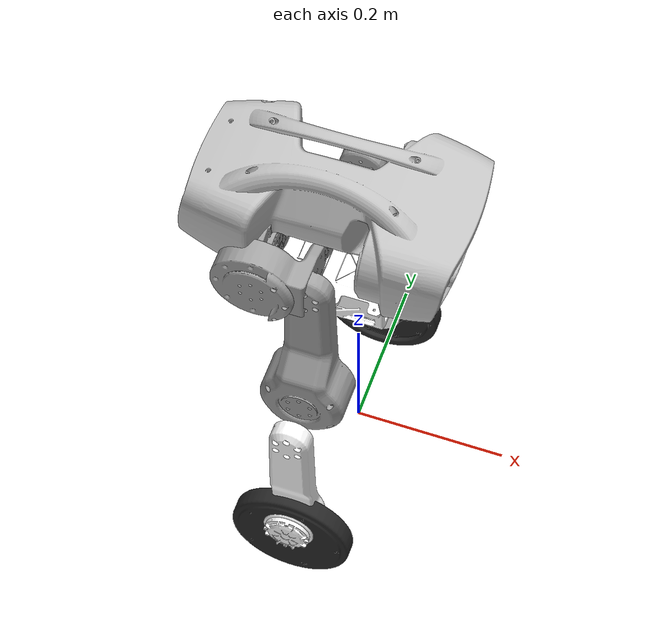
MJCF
<mujoco model="crazydog_urdf">
    <compiler angle="radian" meshdir="meshes" />
    <size njmax="500" nconmax="100" />

    <option cone="elliptic" impratio="100" />

    <default>
        <default class="crazydog">
            <geom friction="0.4" margin="0.001" condim="1"/>
            <joint axis="0 1 0" damping="0.1" armature="0.01" frictionloss="0.2"/>
            <motor ctrlrange="-23.7 23.7"/>
            <default class="hip">
                <joint range="0 1.57"/>
            </default>
            <default class="knee">
                <joint range="-2.61 0"/>
                <motor ctrlrange="-45.43 45.43"/>
            </default>
            <default class="visual">
                <geom type="mesh" contype="0" conaffinity="0" group="2"/>
            </default>
            <default class="collision">
                <geom group="3"/>
                <default class="foot">
                <geom size="0.022" priority="1" condim="6"
                    friction="0.8 0.02 0.01"/>
                </default>
            </default>
        </default>
    </default>

    <asset>
        <mesh name="base_link" file="base_link.STL" />
        <mesh name="R_hip_fix" file="R_hip_fix.STL" />
        <mesh name="R_hip" file="R_hip.STL" />
        <mesh name="R_thigh" file="R_thigh.STL" />
        <mesh name="R_calf" file="R_calf.STL" />
        <mesh name="R_wheel" file="R_wheel.STL" />
        <mesh name="L_hip_fix" file="L_hip_fix.STL" />
        <mesh name="L_hip" file="L_hip.STL" />
        <mesh name="L_thigh" file="L_thigh.STL" />
        <mesh name="L_calf" file="L_calf.STL" />
        <mesh name="L_wheel" file="L_wheel.STL" />
        <mesh name="battery" file="battery.STL" />
    </asset>
    <worldbody>
        <body name="base_link" pos="0 -0.0762001 0.55" childclass="crazydog">
            <inertial pos="-0.029918 -1.7786E-06 -0.025244" quat="1 0 0 0" mass="0.62" diaginertia="0.0014316 0.0022988 0.0023924" />
            <freejoint />
            <site name="imu" pos="0 0 0" />
            <geom type="mesh" contype="0" conaffinity="0" group="1" rgba="0.74902 0.74902 0.74902 1" mesh="base_link" />
            <geom type="mesh" rgba="0.74902 0.74902 0.74902 1" mesh="base_link" />
            <body name="R_hip_fix" pos="0 0 0">
                <inertial pos="-0.071968 -0.056165 -9.0424E-05" quat="1 0 0 0" mass="0.536" diaginertia="0.00021465 0.00012408 0.00012018" />
                <geom type="mesh" contype="0" conaffinity="0" group="1" rgba="0.62745 0.62745 0.62745 1" mesh="R_hip_fix" />
                <geom type="mesh" rgba="0.62745 0.62745 0.62745 1" mesh="R_hip_fix" />
                <body name="R_hip">
                    <inertial pos="0.050012 -0.00066363 -8.4178E-05" quat="1 0 0 0" mass="0.573" diaginertia="0.00013072 0.00024737 0.00015128" />
                    <geom pos="-0.0532504 -0.05625 0" type="mesh" contype="0" conaffinity="0" group="1" rgba="0.62745 0.62745 0.62745 1" mesh="R_hip" />
                    <geom pos="-0.0532504 -0.05625 0" type="mesh" rgba="0.62745 0.62745 0.62745 1" mesh="R_hip" />
                </body>
            </body>
            <body name="L_hip_fix" pos="0 -0.0762001 0">
                <inertial pos="-0.071968 -0.056335 -9.0424E-05" quat="1 0 0 0" mass="0.536" diaginertia="0.00021465 0.00012408 0.00012018" />
                <geom type="mesh" contype="0" conaffinity="0" group="1" rgba="0.62745 0.62745 0.62745 1" mesh="L_hip_fix" />
                <geom type="mesh" rgba="0.62745 0.62745 0.62745 1" mesh="L_hip_fix" />
                <body name="L_hip">
                    <inertial pos="0.050012 0.00066363 -8.4173E-05" quat="1 0 0 0" mass="0.573" diaginertia="0.00013072 0.00024737 0.00015128" />
                    <geom pos="-0.0532504 0.05625 0" type="mesh" contype="0" conaffinity="0" group="1" rgba="0.62745 0.62745 0.62745 1" mesh="L_hip" />
                    <geom pos="-0.0532504 0.05625 0" type="mesh" rgba="0.62745 0.62745 0.62745 1" mesh="L_hip" />
                </body>
            </body>
            <geom type="mesh" contype="0" conaffinity="0" group="1" rgba="1 1 1 1" mesh="battery" />
            <geom type="mesh" rgba="1 1 1 1" mesh="battery" />
            <body name="R_thigh" pos="0 -0.0762001 0">
                <inertial pos="-6.2352e-05 -0.039508 -0.021371" quat="0.705767 -0.0617206 0.0614388 0.70307" mass="0.9105" diaginertia="0.00153432 0.0014519 0.000344653" />
                <joint name="R_hip2thigh" class="hip" />
                <geom type="mesh" contype="0" conaffinity="0" group="1" rgba="0.62745 0.62745 0.62745 1" mesh="R_thigh" />
                <geom type="mesh" rgba="0.62745 0.62745 0.62745 1" mesh="R_thigh" />
                <body name="R_calf" pos="0 -0.0638 -0.215">
                    <inertial pos="1.5378e-05 -0.0082389 -0.16157" quat="0.706874 -0.0247355 0.0253256 0.706453" mass="0.555" diaginertia="0.00142928 0.001409 7.57253e-05" />
                    <joint name="R_thigh2calf" class="knee" />
                    <geom type="mesh" contype="0" conaffinity="0" group="1" rgba="1 1 1 1" mesh="R_calf" />
                    <geom type="mesh" rgba="1 1 1 1" mesh="R_calf" />
                    <body name="R_wheel" pos="0 -0.02455 -0.215">
                        <inertial pos="0 -0.0042663 0" quat="0.707107 0 0 0.707107" mass="0.2805" diaginertia="0.00057738 0.00029524 0.00029524" />
                        <joint name="R_calf2wheel" pos="0 0 0" axis="0 1 0" />
                        <geom type="mesh" contype="0" conaffinity="0" group="1" rgba="0.15294 0.15294 0.15294 1" mesh="R_wheel" />
                        <geom type="mesh" rgba="0.15294 0.15294 0.15294 1" mesh="R_wheel" />
                        <geom pos="0 0.0 0" type="mesh" mesh="R_wheel" class="foot"/>
                    </body>
                </body>
            </body>
            <body name="L_thigh" pos="0 0.0762001 0">
                <inertial pos="-6.238e-05 0.039508 -0.021371" quat="0.70307 0.0614388 -0.0617207 0.705768" mass="0.9105" diaginertia="0.00153432 0.0014519 0.000344653" />
                <joint name="L_hip2thigh" class="hip" />
                <geom type="mesh" contype="0" conaffinity="0" group="1" rgba="0.62745 0.62745 0.62745 1" mesh="L_thigh" />
                <geom type="mesh" rgba="0.62745 0.62745 0.62745 1" mesh="L_thigh" />
                <body name="L_calf" pos="0 0.0638 -0.215">
                    <inertial pos="1.6296e-05 0.0082388 -0.16158" quat="0.706467 0.025327 -0.0247335 0.70686" mass="0.555" diaginertia="0.00142928 0.0014089 7.57375e-05" />
                    <joint name="L_thigh2calf" class="knee" />
                    <geom type="mesh" contype="0" conaffinity="0" group="1" rgba="1 1 1 1" mesh="L_calf" />
                    <geom type="mesh" rgba="1 1 1 1" mesh="L_calf" />
                    <body name="L_wheel" pos="0 0.02455 -0.215">
                        <inertial pos="0 0.0042663 0" quat="0.707107 0 0 0.707107" mass="0.2805" diaginertia="0.00057738 0.00029524 0.00029524" />
                        <joint name="L_calf2wheel" pos="0 0 0" axis="0 1 0" />
                        <geom type="mesh" contype="0" conaffinity="0" group="1" rgba="0.15294 0.15294 0.15294 1" mesh="L_wheel" />
                        <geom type="mesh" rgba="0.15294 0.15294 0.15294 1" mesh="L_wheel" />
                        <geom pos="0 0.0 0" type="mesh" mesh="L_wheel" class="foot"/>
                    </body>
                </body>
            </body>
        </body>
    </worldbody>

    <actuator>
        <motor class="hip" name="R_hip" joint="R_hip2thigh" />
        <motor class="hip" name="L_hip" joint="L_hip2thigh" />

        <motor class="knee" name="R_thigh" joint="R_thigh2calf" />
        <motor class="knee" name="L_thigh" joint="L_thigh2calf" />

        <motor ctrlrange="-15 15" name="R_wheel" joint="R_calf2wheel" />
        <motor ctrlrange="-15 15" name="L_wheel" joint="L_calf2wheel" />
    </actuator>

    <sensor>
        <jointpos name="R_hip_pos" joint="R_hip2thigh" />
        <jointpos name="L_hip_pos" joint="L_hip2thigh" />

        <jointpos name="R_thigh_pos" joint="R_thigh2calf" />
        <jointpos name="L_thigh_pos" joint="L_thigh2calf" />

        <jointpos name="R_wheel_pos" joint="R_calf2wheel" />
        <jointpos name="L_wheel_pos" joint="L_calf2wheel" />

        <jointvel name="R_hip_vel" joint="R_hip2thigh" />
        <jointvel name="L_hip_vel" joint="L_hip2thigh" />

        <jointvel name="R_thigh_vel" joint="R_thigh2calf" />
        <jointvel name="L_thigh_vel" joint="L_thigh2calf" />

        <jointvel name="R_wheel_vel" joint="R_calf2wheel" noise="0.0"/>
        <jointvel name="L_wheel_vel" joint="L_calf2wheel" noise="0.0"/>

        <jointactuatorfrc name="R_hip_torque" joint="R_hip2thigh" noise="0.01" />
        <jointactuatorfrc name="L_hip_torque" joint="L_hip2thigh" noise="0.01" />

        <jointactuatorfrc name="R_thigh_torque" joint="R_thigh2calf" noise="0.01" />
        <jointactuatorfrc name="L_thigh_torque" joint="L_thigh2calf" noise="0.01" />

        <jointactuatorfrc name="R_wheel_torque" joint="R_calf2wheel" />
        <jointactuatorfrc name="L_wheel_torque" joint="L_calf2wheel" />

        <framequat name="imu_quat" objtype="site" objname="imu" noise="0.0"/>
        <gyro name="imu_gyro" site="imu" noise="0.0"/>
        <accelerometer name="imu_acc" site="imu" />

        <framepos name="frame_pos" objtype="site" objname="imu" />
        <framelinvel name="frame_lin_vel" objtype="site" objname="imu" />
        <frameangvel name="frame_ang_vel" objtype="site" objname="imu" />
    </sensor>
</mujoco>
